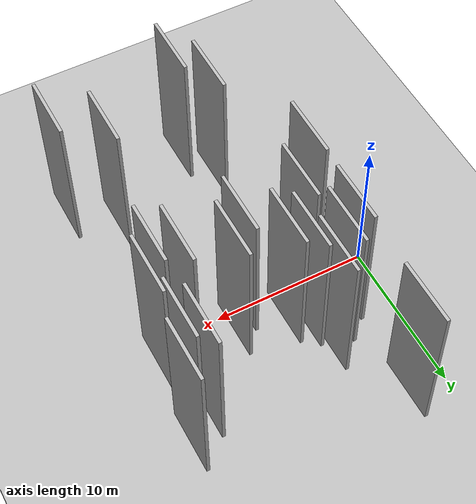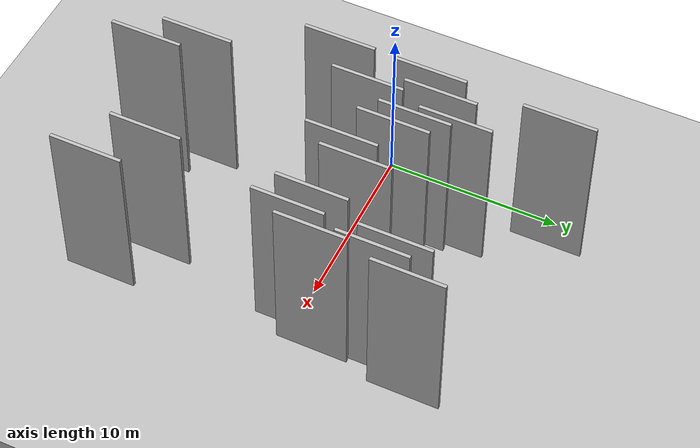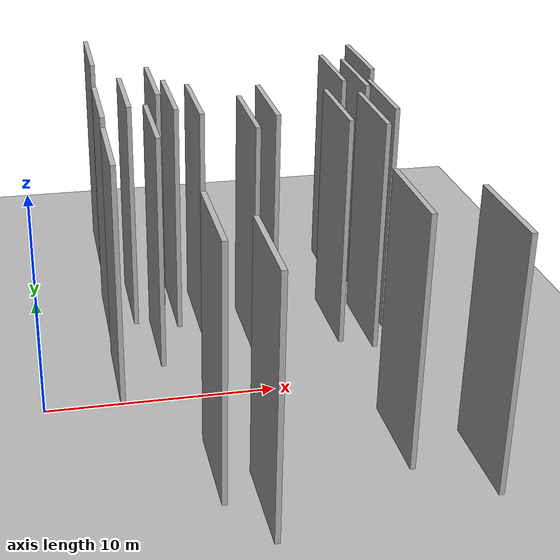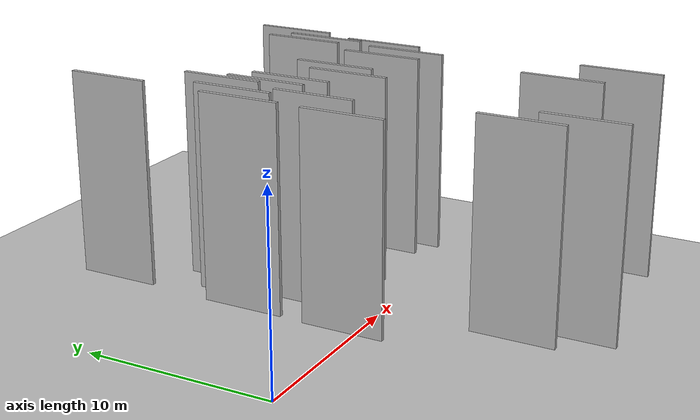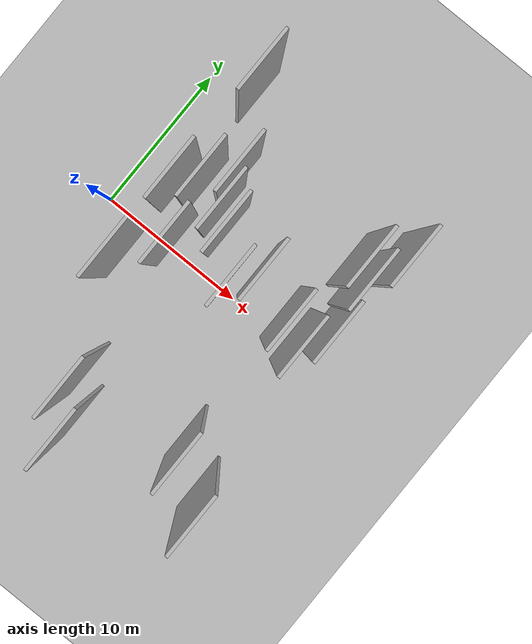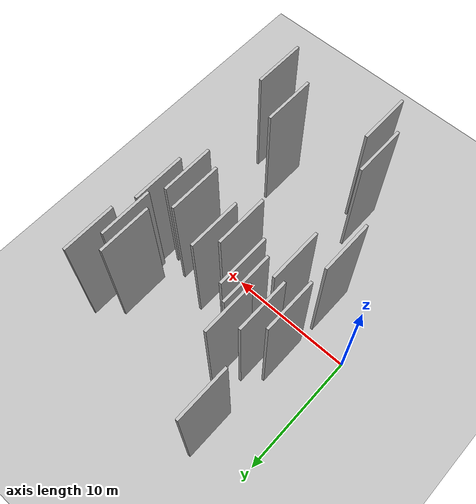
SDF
<?xml version="1.0" encoding="utf-8"?>

<sdf version="1.6">

   <world name="default">

      <gui fullscreen="0">

         <camera name="user_camera">

            <pose>-15 0 4.57585 0 0 0</pose>

            <view_controller>orbit</view_controller>

         </camera>

      </gui>

      <scene>

         <sky>

           <clouds>

             <speed>12</speed>

           </clouds>

         </sky>

         <ambient>0.4 0.4 0.4 1</ambient>

         <background>0.7 0.7 0.7 1</background>

         <shadows>1</shadows>

      </scene>

      <gravity>0 0 -9.8066</gravity>

      <magnetic_field>6e-06 2.3e-05 -4.2e-05</magnetic_field>

      <physics default="0" name="default_physics" type="ode">

         <ode>

            <solver>

               <type>quick</type>

               <iters>10</iters>

               <sor>1.0</sor>

               <use_dynamic_moi_rescaling>0</use_dynamic_moi_rescaling>

            </solver>

            <constraints>

               <cfm>0</cfm>

               <erp>0.2</erp>

               <contact_max_correcting_vel>100</contact_max_correcting_vel>

               <contact_surface_layer>0.001</contact_surface_layer>

            </constraints>

         </ode>

         <max_step_size>0.004</max_step_size>

         <real_time_factor>1</real_time_factor>

         <real_time_update_rate>250</real_time_update_rate>

      </physics>

      <light name="sun" type="directional">

         <cast_shadows>1</cast_shadows>

         <pose>0 0 10 0 0 0</pose>

         <diffuse>0.8 0.8 0.8 1</diffuse>

         <specular>0.2 0.2 0.2 1</specular>

         <attenuation>

            <range>1000</range>

            <constant>0.9</constant>

            <linear>0.01</linear>

            <quadratic>0.001</quadratic>

         </attenuation>

         <direction>-0.5 0.1 -0.9</direction>

      </light>

      <include>

         <name>ground_plane_1</name>

         <uri>model://HANNAS_ground_plane</uri>

         <pose>0 0 0  0 0 0</pose>

      </include>

      <include>

         <name>ground_plane_2</name>

         <uri>model://HANNAS_ground_plane</uri>

         <pose>100 0 0  0 0 0</pose>

      </include>

      <model name="HANNAS_wall_1">

         <static>1</static>

         <pose frame="">4.3044 4.4478 2.5 0.000000 0.000000 1.570796</pose>

         <link name="link">

            <pose frame="">0 0 5.00 0 0 0</pose>

            <collision name="collision">

               <geometry>

                  <box>

                     <size>4.00 0.2 10.00</size>

                  </box>

               </geometry>

               <max_contacts>10</max_contacts>

               <surface>

                  <contact>

                     <ode/>

                  </contact>

                  <bounce/>

                  <friction>

                     <torsional>

                        <ode/>

                     </torsional>

                     <ode/>

                  </friction>

               </surface>

            </collision>

            <visual name="visual">

               <cast_shadows>0</cast_shadows>

               <geometry>

                  <box>

                     <size>4.00 0.2 10.00</size>

                  </box>

               </geometry>

               <material>

                  <script>

                     <uri>model://HANNAS_wall/materials/scripts</uri>

                     <uri>model://HANNAS_wall/materials/textures</uri>

                     <name>vrc/HANNAS_wall</name>

                  </script>

               </material>

            </visual>

            <self_collide>0</self_collide>

            <enable_wind>0</enable_wind>

            <kinematic>0</kinematic>

         </link>

      </model>

      <model name="HANNAS_wall_2">

         <static>1</static>

         <pose frame="">4.9974 0.6891 2.5 0.000000 0.000000 1.570796</pose>

         <link name="link">

            <pose frame="">0 0 5.00 0 0 0</pose>

            <collision name="collision">

               <geometry>

                  <box>

                     <size>4.00 0.2 10.00</size>

                  </box>

               </geometry>

               <max_contacts>10</max_contacts>

               <surface>

                  <contact>

                     <ode/>

                  </contact>

                  <bounce/>

                  <friction>

                     <torsional>

                        <ode/>

                     </torsional>

                     <ode/>

                  </friction>

               </surface>

            </collision>

            <visual name="visual">

               <cast_shadows>0</cast_shadows>

               <geometry>

                  <box>

                     <size>4.00 0.2 10.00</size>

                  </box>

               </geometry>

               <material>

                  <script>

                     <uri>model://HANNAS_wall/materials/scripts</uri>

                     <uri>model://HANNAS_wall/materials/textures</uri>

                     <name>vrc/HANNAS_wall</name>

                  </script>

               </material>

            </visual>

            <self_collide>0</self_collide>

            <enable_wind>0</enable_wind>

            <kinematic>0</kinematic>

         </link>

      </model>

      <model name="HANNAS_wall_3">

         <static>1</static>

         <pose frame="">3.0500 -1.7986 2.5 0.000000 0.000000 1.570796</pose>

         <link name="link">

            <pose frame="">0 0 5.00 0 0 0</pose>

            <collision name="collision">

               <geometry>

                  <box>

                     <size>4.00 0.2 10.00</size>

                  </box>

               </geometry>

               <max_contacts>10</max_contacts>

               <surface>

                  <contact>

                     <ode/>

                  </contact>

                  <bounce/>

                  <friction>

                     <torsional>

                        <ode/>

                     </torsional>

                     <ode/>

                  </friction>

               </surface>

            </collision>

            <visual name="visual">

               <cast_shadows>0</cast_shadows>

               <geometry>

                  <box>

                     <size>4.00 0.2 10.00</size>

                  </box>

               </geometry>

               <material>

                  <script>

                     <uri>model://HANNAS_wall/materials/scripts</uri>

                     <uri>model://HANNAS_wall/materials/textures</uri>

                     <name>vrc/HANNAS_wall</name>

                  </script>

               </material>

            </visual>

            <self_collide>0</self_collide>

            <enable_wind>0</enable_wind>

            <kinematic>0</kinematic>

         </link>

      </model>

      <model name="HANNAS_wall_4">

         <static>1</static>

         <pose frame="">6.1408 3.8386 2.5 0.000000 0.000000 1.570796</pose>

         <link name="link">

            <pose frame="">0 0 5.00 0 0 0</pose>

            <collision name="collision">

               <geometry>

                  <box>

                     <size>4.00 0.2 10.00</size>

                  </box>

               </geometry>

               <max_contacts>10</max_contacts>

               <surface>

                  <contact>

                     <ode/>

                  </contact>

                  <bounce/>

                  <friction>

                     <torsional>

                        <ode/>

                     </torsional>

                     <ode/>

                  </friction>

               </surface>

            </collision>

            <visual name="visual">

               <cast_shadows>0</cast_shadows>

               <geometry>

                  <box>

                     <size>4.00 0.2 10.00</size>

                  </box>

               </geometry>

               <material>

                  <script>

                     <uri>model://HANNAS_wall/materials/scripts</uri>

                     <uri>model://HANNAS_wall/materials/textures</uri>

                     <name>vrc/HANNAS_wall</name>

                  </script>

               </material>

            </visual>

            <self_collide>0</self_collide>

            <enable_wind>0</enable_wind>

            <kinematic>0</kinematic>

         </link>

      </model>

      <model name="HANNAS_wall_5">

         <static>1</static>

         <pose frame="">10.0434 2.4014 2.5 0.000000 0.000000 1.570796</pose>

         <link name="link">

            <pose frame="">0 0 5.00 0 0 0</pose>

            <collision name="collision">

               <geometry>

                  <box>

                     <size>4.00 0.2 10.00</size>

                  </box>

               </geometry>

               <max_contacts>10</max_contacts>

               <surface>

                  <contact>

                     <ode/>

                  </contact>

                  <bounce/>

                  <friction>

                     <torsional>

                        <ode/>

                     </torsional>

                     <ode/>

                  </friction>

               </surface>

            </collision>

            <visual name="visual">

               <cast_shadows>0</cast_shadows>

               <geometry>

                  <box>

                     <size>4.00 0.2 10.00</size>

                  </box>

               </geometry>

               <material>

                  <script>

                     <uri>model://HANNAS_wall/materials/scripts</uri>

                     <uri>model://HANNAS_wall/materials/textures</uri>

                     <name>vrc/HANNAS_wall</name>

                  </script>

               </material>

            </visual>

            <self_collide>0</self_collide>

            <enable_wind>0</enable_wind>

            <kinematic>0</kinematic>

         </link>

      </model>

      <model name="HANNAS_wall_6">

         <static>1</static>

         <pose frame="">5.8024 -8.7024 2.5 0.000000 0.000000 1.570796</pose>

         <link name="link">

            <pose frame="">0 0 5.00 0 0 0</pose>

            <collision name="collision">

               <geometry>

                  <box>

                     <size>4.00 0.2 10.00</size>

                  </box>

               </geometry>

               <max_contacts>10</max_contacts>

               <surface>

                  <contact>

                     <ode/>

                  </contact>

                  <bounce/>

                  <friction>

                     <torsional>

                        <ode/>

                     </torsional>

                     <ode/>

                  </friction>

               </surface>

            </collision>

            <visual name="visual">

               <cast_shadows>0</cast_shadows>

               <geometry>

                  <box>

                     <size>4.00 0.2 10.00</size>

                  </box>

               </geometry>

               <material>

                  <script>

                     <uri>model://HANNAS_wall/materials/scripts</uri>

                     <uri>model://HANNAS_wall/materials/textures</uri>

                     <name>vrc/HANNAS_wall</name>

                  </script>

               </material>

            </visual>

            <self_collide>0</self_collide>

            <enable_wind>0</enable_wind>

            <kinematic>0</kinematic>

         </link>

      </model>

      <model name="HANNAS_wall_7">

         <static>1</static>

         <pose frame="">3.3330 10.5490 2.5 0.000000 0.000000 1.570796</pose>

         <link name="link">

            <pose frame="">0 0 5.00 0 0 0</pose>

            <collision name="collision">

               <geometry>

                  <box>

                     <size>4.00 0.2 10.00</size>

                  </box>

               </geometry>

               <max_contacts>10</max_contacts>

               <surface>

                  <contact>

                     <ode/>

                  </contact>

                  <bounce/>

                  <friction>

                     <torsional>

                        <ode/>

                     </torsional>

                     <ode/>

                  </friction>

               </surface>

            </collision>

            <visual name="visual">

               <cast_shadows>0</cast_shadows>

               <geometry>

                  <box>

                     <size>4.00 0.2 10.00</size>

                  </box>

               </geometry>

               <material>

                  <script>

                     <uri>model://HANNAS_wall/materials/scripts</uri>

                     <uri>model://HANNAS_wall/materials/textures</uri>

                     <name>vrc/HANNAS_wall</name>

                  </script>

               </material>

            </visual>

            <self_collide>0</self_collide>

            <enable_wind>0</enable_wind>

            <kinematic>0</kinematic>

         </link>

      </model>

      <model name="HANNAS_wall_8">

         <static>1</static>

         <pose frame="">12.7370 1.3016 2.5 0.000000 0.000000 1.570796</pose>

         <link name="link">

            <pose frame="">0 0 5.00 0 0 0</pose>

            <collision name="collision">

               <geometry>

                  <box>

                     <size>4.00 0.2 10.00</size>

                  </box>

               </geometry>

               <max_contacts>10</max_contacts>

               <surface>

                  <contact>

                     <ode/>

                  </contact>

                  <bounce/>

                  <friction>

                     <torsional>

                        <ode/>

                     </torsional>

                     <ode/>

                  </friction>

               </surface>

            </collision>

            <visual name="visual">

               <cast_shadows>0</cast_shadows>

               <geometry>

                  <box>

                     <size>4.00 0.2 10.00</size>

                  </box>

               </geometry>

               <material>

                  <script>

                     <uri>model://HANNAS_wall/materials/scripts</uri>

                     <uri>model://HANNAS_wall/materials/textures</uri>

                     <name>vrc/HANNAS_wall</name>

                  </script>

               </material>

            </visual>

            <self_collide>0</self_collide>

            <enable_wind>0</enable_wind>

            <kinematic>0</kinematic>

         </link>

      </model>

      <model name="HANNAS_wall_9">

         <static>1</static>

         <pose frame="">7.1358 -10.9768 2.5 0.000000 0.000000 1.570796</pose>

         <link name="link">

            <pose frame="">0 0 5.00 0 0 0</pose>

            <collision name="collision">

               <geometry>

                  <box>

                     <size>4.00 0.2 10.00</size>

                  </box>

               </geometry>

               <max_contacts>10</max_contacts>

               <surface>

                  <contact>

                     <ode/>

                  </contact>

                  <bounce/>

                  <friction>

                     <torsional>

                        <ode/>

                     </torsional>

                     <ode/>

                  </friction>

               </surface>

            </collision>

            <visual name="visual">

               <cast_shadows>0</cast_shadows>

               <geometry>

                  <box>

                     <size>4.00 0.2 10.00</size>

                  </box>

               </geometry>

               <material>

                  <script>

                     <uri>model://HANNAS_wall/materials/scripts</uri>

                     <uri>model://HANNAS_wall/materials/textures</uri>

                     <name>vrc/HANNAS_wall</name>

                  </script>

               </material>

            </visual>

            <self_collide>0</self_collide>

            <enable_wind>0</enable_wind>

            <kinematic>0</kinematic>

         </link>

      </model>

      <model name="HANNAS_wall_10">

         <static>1</static>

         <pose frame="">14.9526 2.3204 2.5 0.000000 0.000000 1.570796</pose>

         <link name="link">

            <pose frame="">0 0 5.00 0 0 0</pose>

            <collision name="collision">

               <geometry>

                  <box>

                     <size>4.00 0.2 10.00</size>

                  </box>

               </geometry>

               <max_contacts>10</max_contacts>

               <surface>

                  <contact>

                     <ode/>

                  </contact>

                  <bounce/>

                  <friction>

                     <torsional>

                        <ode/>

                     </torsional>

                     <ode/>

                  </friction>

               </surface>

            </collision>

            <visual name="visual">

               <cast_shadows>0</cast_shadows>

               <geometry>

                  <box>

                     <size>4.00 0.2 10.00</size>

                  </box>

               </geometry>

               <material>

                  <script>

                     <uri>model://HANNAS_wall/materials/scripts</uri>

                     <uri>model://HANNAS_wall/materials/textures</uri>

                     <name>vrc/HANNAS_wall</name>

                  </script>

               </material>

            </visual>

            <self_collide>0</self_collide>

            <enable_wind>0</enable_wind>

            <kinematic>0</kinematic>

         </link>

      </model>

      <model name="HANNAS_wall_11">

         <static>1</static>

         <pose frame="">3.1370 3.3829 2.5 0.000000 0.000000 1.570796</pose>

         <link name="link">

            <pose frame="">0 0 5.00 0 0 0</pose>

            <collision name="collision">

               <geometry>

                  <box>

                     <size>4.00 0.2 10.00</size>

                  </box>

               </geometry>

               <max_contacts>10</max_contacts>

               <surface>

                  <contact>

                     <ode/>

                  </contact>

                  <bounce/>

                  <friction>

                     <torsional>

                        <ode/>

                     </torsional>

                     <ode/>

                  </friction>

               </surface>

            </collision>

            <visual name="visual">

               <cast_shadows>0</cast_shadows>

               <geometry>

                  <box>

                     <size>4.00 0.2 10.00</size>

                  </box>

               </geometry>

               <material>

                  <script>

                     <uri>model://HANNAS_wall/materials/scripts</uri>

                     <uri>model://HANNAS_wall/materials/textures</uri>

                     <name>vrc/HANNAS_wall</name>

                  </script>

               </material>

            </visual>

            <self_collide>0</self_collide>

            <enable_wind>0</enable_wind>

            <kinematic>0</kinematic>

         </link>

      </model>

      <model name="HANNAS_wall_12">

         <static>1</static>

         <pose frame="">14.0416 0.6361 2.5 0.000000 0.000000 1.570796</pose>

         <link name="link">

            <pose frame="">0 0 5.00 0 0 0</pose>

            <collision name="collision">

               <geometry>

                  <box>

                     <size>4.00 0.2 10.00</size>

                  </box>

               </geometry>

               <max_contacts>10</max_contacts>

               <surface>

                  <contact>

                     <ode/>

                  </contact>

                  <bounce/>

                  <friction>

                     <torsional>

                        <ode/>

                     </torsional>

                     <ode/>

                  </friction>

               </surface>

            </collision>

            <visual name="visual">

               <cast_shadows>0</cast_shadows>

               <geometry>

                  <box>

                     <size>4.00 0.2 10.00</size>

                  </box>

               </geometry>

               <material>

                  <script>

                     <uri>model://HANNAS_wall/materials/scripts</uri>

                     <uri>model://HANNAS_wall/materials/textures</uri>

                     <name>vrc/HANNAS_wall</name>

                  </script>

               </material>

            </visual>

            <self_collide>0</self_collide>

            <enable_wind>0</enable_wind>

            <kinematic>0</kinematic>

         </link>

      </model>

      <model name="HANNAS_wall_13">

         <static>1</static>

         <pose frame="">7.0775 3.0799 2.5 0.000000 0.000000 1.570796</pose>

         <link name="link">

            <pose frame="">0 0 5.00 0 0 0</pose>

            <collision name="collision">

               <geometry>

                  <box>

                     <size>4.00 0.2 10.00</size>

                  </box>

               </geometry>

               <max_contacts>10</max_contacts>

               <surface>

                  <contact>

                     <ode/>

                  </contact>

                  <bounce/>

                  <friction>

                     <torsional>

                        <ode/>

                     </torsional>

                     <ode/>

                  </friction>

               </surface>

            </collision>

            <visual name="visual">

               <cast_shadows>0</cast_shadows>

               <geometry>

                  <box>

                     <size>4.00 0.2 10.00</size>

                  </box>

               </geometry>

               <material>

                  <script>

                     <uri>model://HANNAS_wall/materials/scripts</uri>

                     <uri>model://HANNAS_wall/materials/textures</uri>

                     <name>vrc/HANNAS_wall</name>

                  </script>

               </material>

            </visual>

            <self_collide>0</self_collide>

            <enable_wind>0</enable_wind>

            <kinematic>0</kinematic>

         </link>

      </model>

      <model name="HANNAS_wall_14">

         <static>1</static>

         <pose frame="">8.9566 1.1129 2.5 0.000000 0.000000 1.570796</pose>

         <link name="link">

            <pose frame="">0 0 5.00 0 0 0</pose>

            <collision name="collision">

               <geometry>

                  <box>

                     <size>4.00 0.2 10.00</size>

                  </box>

               </geometry>

               <max_contacts>10</max_contacts>

               <surface>

                  <contact>

                     <ode/>

                  </contact>

                  <bounce/>

                  <friction>

                     <torsional>

                        <ode/>

                     </torsional>

                     <ode/>

                  </friction>

               </surface>

            </collision>

            <visual name="visual">

               <cast_shadows>0</cast_shadows>

               <geometry>

                  <box>

                     <size>4.00 0.2 10.00</size>

                  </box>

               </geometry>

               <material>

                  <script>

                     <uri>model://HANNAS_wall/materials/scripts</uri>

                     <uri>model://HANNAS_wall/materials/textures</uri>

                     <name>vrc/HANNAS_wall</name>

                  </script>

               </material>

            </visual>

            <self_collide>0</self_collide>

            <enable_wind>0</enable_wind>

            <kinematic>0</kinematic>

         </link>

      </model>

      <model name="HANNAS_wall_15">

         <static>1</static>

         <pose frame="">5.6712 5.8677 2.5 0.000000 0.000000 1.570796</pose>

         <link name="link">

            <pose frame="">0 0 5.00 0 0 0</pose>

            <collision name="collision">

               <geometry>

                  <box>

                     <size>4.00 0.2 10.00</size>

                  </box>

               </geometry>

               <max_contacts>10</max_contacts>

               <surface>

                  <contact>

                     <ode/>

                  </contact>

                  <bounce/>

                  <friction>

                     <torsional>

                        <ode/>

                     </torsional>

                     <ode/>

                  </friction>

               </surface>

            </collision>

            <visual name="visual">

               <cast_shadows>0</cast_shadows>

               <geometry>

                  <box>

                     <size>4.00 0.2 10.00</size>

                  </box>

               </geometry>

               <material>

                  <script>

                     <uri>model://HANNAS_wall/materials/scripts</uri>

                     <uri>model://HANNAS_wall/materials/textures</uri>

                     <name>vrc/HANNAS_wall</name>

                  </script>

               </material>

            </visual>

            <self_collide>0</self_collide>

            <enable_wind>0</enable_wind>

            <kinematic>0</kinematic>

         </link>

      </model>

      <model name="HANNAS_wall_16">

         <static>1</static>

         <pose frame="">15.5494 7.7361 2.5 0.000000 0.000000 1.570796</pose>

         <link name="link">

            <pose frame="">0 0 5.00 0 0 0</pose>

            <collision name="collision">

               <geometry>

                  <box>

                     <size>4.00 0.2 10.00</size>

                  </box>

               </geometry>

               <max_contacts>10</max_contacts>

               <surface>

                  <contact>

                     <ode/>

                  </contact>

                  <bounce/>

                  <friction>

                     <torsional>

                        <ode/>

                     </torsional>

                     <ode/>

                  </friction>

               </surface>

            </collision>

            <visual name="visual">

               <cast_shadows>0</cast_shadows>

               <geometry>

                  <box>

                     <size>4.00 0.2 10.00</size>

                  </box>

               </geometry>

               <material>

                  <script>

                     <uri>model://HANNAS_wall/materials/scripts</uri>

                     <uri>model://HANNAS_wall/materials/textures</uri>

                     <name>vrc/HANNAS_wall</name>

                  </script>

               </material>

            </visual>

            <self_collide>0</self_collide>

            <enable_wind>0</enable_wind>

            <kinematic>0</kinematic>

         </link>

      </model>

      <model name="HANNAS_wall_17">

         <static>1</static>

         <pose frame="">15.3590 -9.8850 2.5 0.000000 0.000000 1.570796</pose>

         <link name="link">

            <pose frame="">0 0 5.00 0 0 0</pose>

            <collision name="collision">

               <geometry>

                  <box>

                     <size>4.00 0.2 10.00</size>

                  </box>

               </geometry>

               <max_contacts>10</max_contacts>

               <surface>

                  <contact>

                     <ode/>

                  </contact>

                  <bounce/>

                  <friction>

                     <torsional>

                        <ode/>

                     </torsional>

                     <ode/>

                  </friction>

               </surface>

            </collision>

            <visual name="visual">

               <cast_shadows>0</cast_shadows>

               <geometry>

                  <box>

                     <size>4.00 0.2 10.00</size>

                  </box>

               </geometry>

               <material>

                  <script>

                     <uri>model://HANNAS_wall/materials/scripts</uri>

                     <uri>model://HANNAS_wall/materials/textures</uri>

                     <name>vrc/HANNAS_wall</name>

                  </script>

               </material>

            </visual>

            <self_collide>0</self_collide>

            <enable_wind>0</enable_wind>

            <kinematic>0</kinematic>

         </link>

      </model>

      <model name="HANNAS_wall_18">

         <static>1</static>

         <pose frame="">12.8026 -7.9146 2.5 0.000000 0.000000 1.570796</pose>

         <link name="link">

            <pose frame="">0 0 5.00 0 0 0</pose>

            <collision name="collision">

               <geometry>

                  <box>

                     <size>4.00 0.2 10.00</size>

                  </box>

               </geometry>

               <max_contacts>10</max_contacts>

               <surface>

                  <contact>

                     <ode/>

                  </contact>

                  <bounce/>

                  <friction>

                     <torsional>

                        <ode/>

                     </torsional>

                     <ode/>

                  </friction>

               </surface>

            </collision>

            <visual name="visual">

               <cast_shadows>0</cast_shadows>

               <geometry>

                  <box>

                     <size>4.00 0.2 10.00</size>

                  </box>

               </geometry>

               <material>

                  <script>

                     <uri>model://HANNAS_wall/materials/scripts</uri>

                     <uri>model://HANNAS_wall/materials/textures</uri>

                     <name>vrc/HANNAS_wall</name>

                  </script>

               </material>

            </visual>

            <self_collide>0</self_collide>

            <enable_wind>0</enable_wind>

            <kinematic>0</kinematic>

         </link>

      </model>

      <model name="HANNAS_wall_19">

         <static>1</static>

         <pose frame="">14.6626 5.4734 2.5 0.000000 0.000000 1.570796</pose>

         <link name="link">

            <pose frame="">0 0 5.00 0 0 0</pose>

            <collision name="collision">

               <geometry>

                  <box>

                     <size>4.00 0.2 10.00</size>

                  </box>

               </geometry>

               <max_contacts>10</max_contacts>

               <surface>

                  <contact>

                     <ode/>

                  </contact>

                  <bounce/>

                  <friction>

                     <torsional>

                        <ode/>

                     </torsional>

                     <ode/>

                  </friction>

               </surface>

            </collision>

            <visual name="visual">

               <cast_shadows>0</cast_shadows>

               <geometry>

                  <box>

                     <size>4.00 0.2 10.00</size>

                  </box>

               </geometry>

               <material>

                  <script>

                     <uri>model://HANNAS_wall/materials/scripts</uri>

                     <uri>model://HANNAS_wall/materials/textures</uri>

                     <name>vrc/HANNAS_wall</name>

                  </script>

               </material>

            </visual>

            <self_collide>0</self_collide>

            <enable_wind>0</enable_wind>

            <kinematic>0</kinematic>

         </link>

      </model>

      <model name="HANNAS_wall_20">

         <static>1</static>

         <pose frame="">13.8625 6.3239 2.5 0.000000 0.000000 1.570796</pose>

         <link name="link">

            <pose frame="">0 0 5.00 0 0 0</pose>

            <collision name="collision">

               <geometry>

                  <box>

                     <size>4.00 0.2 10.00</size>

                  </box>

               </geometry>

               <max_contacts>10</max_contacts>

               <surface>

                  <contact>

                     <ode/>

                  </contact>

                  <bounce/>

                  <friction>

                     <torsional>

                        <ode/>

                     </torsional>

                     <ode/>

                  </friction>

               </surface>

            </collision>

            <visual name="visual">

               <cast_shadows>0</cast_shadows>

               <geometry>

                  <box>

                     <size>4.00 0.2 10.00</size>

                  </box>

               </geometry>

               <material>

                  <script>

                     <uri>model://HANNAS_wall/materials/scripts</uri>

                     <uri>model://HANNAS_wall/materials/textures</uri>

                     <name>vrc/HANNAS_wall</name>

                  </script>

               </material>

            </visual>

            <self_collide>0</self_collide>

            <enable_wind>0</enable_wind>

            <kinematic>0</kinematic>

         </link>

      </model>

   </world>

</sdf>

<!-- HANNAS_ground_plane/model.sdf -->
<sdf version="1.4">
<model name="HANNAS_ground_plane">
  <static>true</static>
    <link name="link">
      <collision name="collision">
        <geometry>
          <plane>
            <normal>0 0 1</normal>
            <size>1000 1000</size>
          </plane>
        </geometry>
        <surface>
          <friction>
            <ode>
              <mu>100</mu>
              <mu2>50</mu2>
            </ode>
          </friction>
        </surface>
      </collision>
      <visual name="visual">
        <cast_shadows>false</cast_shadows>
        <geometry>
          <plane>
            <normal>0 0 1</normal>
            <size>1000 1000</size>
          </plane>
        </geometry>
        <material>
          <script>
            <uri>model://HANNAS_ground_plane/materials/scripts/HANNAS_ground_plane.material</uri>
	    <uri>model://HANNAS_ground_plane/materials/textures</uri>
            <name>HANNASGroundPlane/Image</name>
          </script>
        </material>
      </visual>
    </link>
  </model>
</sdf>
